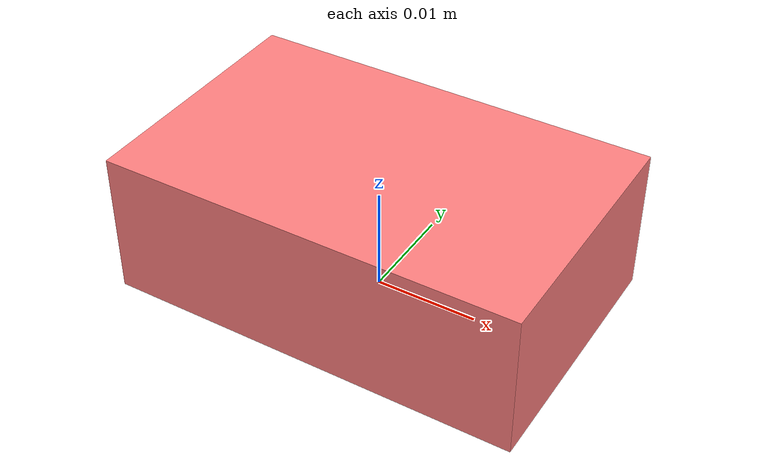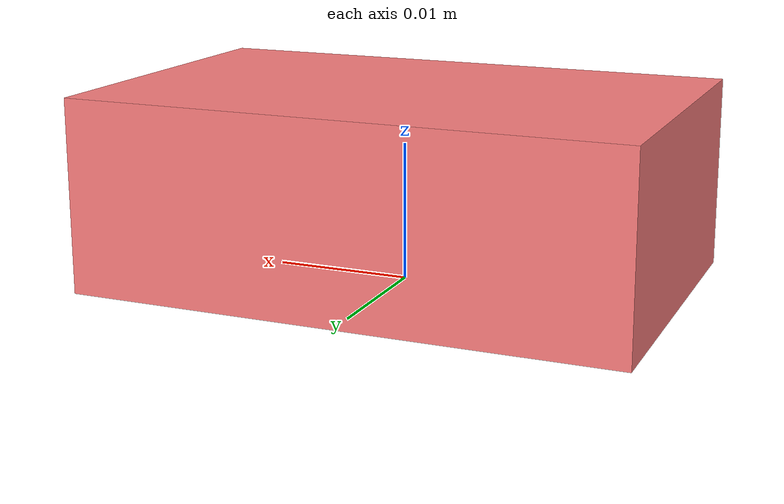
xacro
<?xml version="1.0"?>
<robot xmlns:xacro="http://www.ros.org/wiki/xacro" >

    <!-- dimensions of the vltg box -->
    <xacro:property name="vltglength" value="0.040" />
    <xacro:property name="vltgwidth" value="0.025" />
    <xacro:property name="vltgheight" value="0.014" />

    <material name="vltg-box">
        <color rgba="1.0 0.5 0.5 1.0" />
    </material>

    <link name="vltg_box">
        <visual>
            <origin xyz="0.0 0.0 ${vltgheight/2}" />
            <geometry>
                <box size="${vltglength} ${vltgwidth} ${vltgheight}" />
            </geometry>
            <material name="vltg-box" />
        </visual>
        <collision>
            <origin xyz="0.0 0.0 ${vltgheight/2}" />
            <geometry>
                <box size="${vltglength} ${vltgwidth} ${vltgheight}" />
            </geometry>
        </collision>
        <xacro:inertial_box mass="0.009" x="${vltglength}" y="${vltgwidth}" z="${vltgheight}">
            <origin xyz="0 0 0" rpy="0 0 0"/>
        </xacro:inertial_box>
    </link>

    <gazebo reference="vltg_box">
        <material>Gazebo/Blue</material>
    </gazebo>

</robot>
